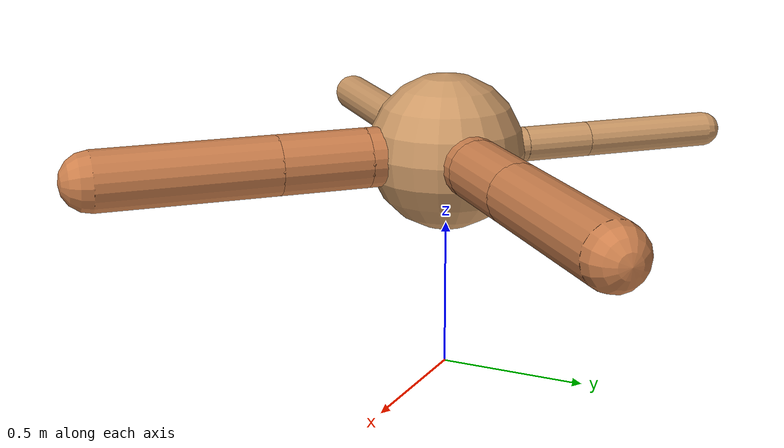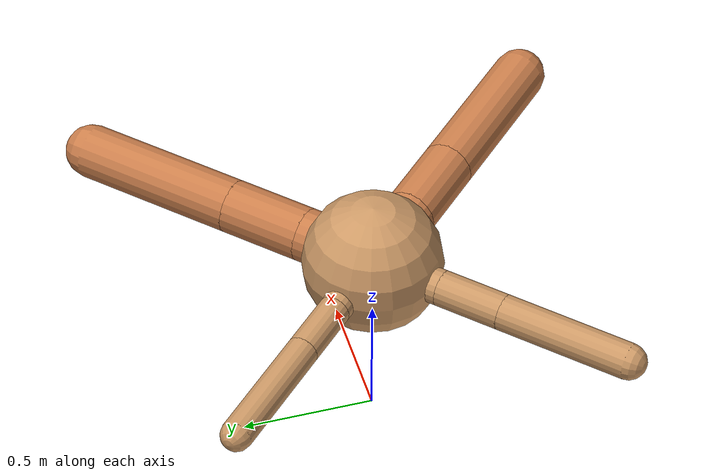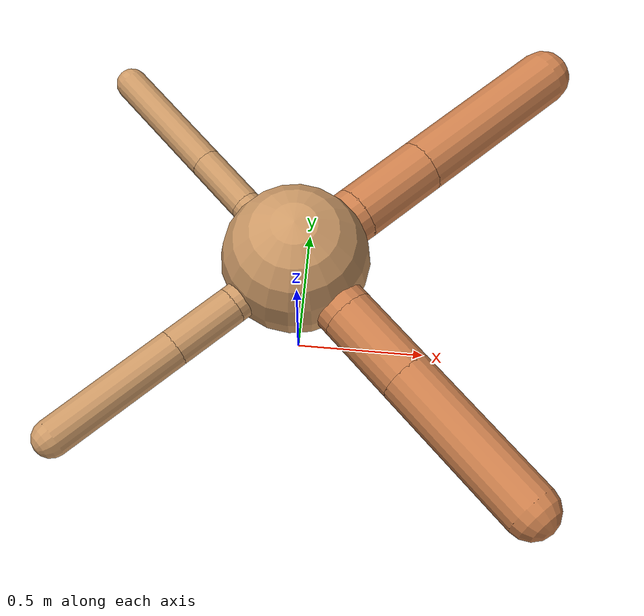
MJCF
<?xml version="1.0" ?>
<mujoco model="ant">

	<compiler angle="degree" coordinate="local" inertiafromgeom="true"/>

	<option integrator="RK4" timestep="0.01"/>

	<custom>

		<numeric data="0.0 0.0 0.55 1.0 0.0 0.0 0.0 0.0 1.0 0.0 -1.0 0.0 -1.0 0.0 1.0" name="init_qpos"/>

	</custom>

	<default>

		<joint armature="1" damping="1" limited="true"/>

		<geom conaffinity="0" condim="3" density="5.0" friction="1.5 0.1 0.1" margin="0.01" rgba="0.8 0.6 0.4 1"/>

	</default>

	<worldbody>

		<body name="torso" pos="0 0 0.75">

			<geom name="torso_geom" pos="0 0 0" size="0.26213571872190594" type="sphere"/>

			<!--joint armature="0" damping="0" limited="false" margin="0.01" name="root" pos="0 0 0" type="free"/-->

			<body name="front_left_leg" pos="0 0 0">

				<geom fromto="0 0 0 0.2 0.2 0" name="aux_1_geom" size="0.101212511032426" type="capsule" rgba=".8 .5 .3 1"/>

				<body name="aux_1" pos="0.2 0.2 0">

					<joint axis="0 0 1" name="hip_1" pos="0.0 0.0 0.0" range="-40 40" type="hinge"/>

					<geom fromto="0 0 0 0.217905930477387 0.217905930477387 0" name="left_leg_geom" size="0.101212511032426" type="capsule" rgba=".8 .5 .3 1"/>

					<body pos="0.217905930477387 0.217905930477387 0" name="front_left_foot">

						<joint axis="-1 1 0" name="ankle_1" pos="0.0 0.0 0.0" range="30 100" type="hinge"/>

						<geom fromto="0 0 0 0.435811860954774 0.435811860954774 0" name="left_ankle_geom" size="0.101212511032426" type="capsule" rgba=".8 .5 .3 1"/>

					</body>

				</body>

			</body>

			<body name="front_right_leg" pos="0 0 0">

				<geom fromto="0 0 0 -0.2 0.2 0" name="aux_2_geom" size="0.05895863158229936" type="capsule"/>

				<body name="aux_2" pos="-0.2 0.2 0">

					<joint axis="0 0 1" name="hip_2" pos="0.0 0.0 0.0" range="-40 40" type="hinge"/>

					<geom fromto="0 0 0 -0.16236474574136794 0.16236474574136794 0" name="right_leg_geom" size="0.05895863158229936" type="capsule"/>

					<body pos="-0.16236474574136794 0.16236474574136794 0" name="front_right_foot">

						<joint axis="1 1 0" name="ankle_2" pos="0.0 0.0 0.0" range="-100 -30" type="hinge"/>

						<geom fromto="0 0 0 -0.3247294914827359 0.3247294914827359 0" name="right_ankle_geom" size="0.05895863158229936" type="capsule"/>

					</body>

				</body>

			</body>

			<body name="left_back_leg" pos="0 0 0">

				<geom fromto="0 0 0 -0.2 -0.2 0" name="aux_3_geom" size="0.06690814778960522" type="capsule"/>

				<body name="aux_3" pos="-0.2 -0.2 0">

					<joint axis="0 0 1" name="hip_3" pos="0.0 0.0 0.0" range="-40 40" type="hinge"/>

					<geom fromto="0 0 0 -0.17565225762073755 -0.17565225762073755 0" name="back_leg_geom" size="0.06690814778960522" type="capsule"/>

					<body pos="-0.17565225762073755 -0.17565225762073755 0" name="left_back_foot">

						<joint axis="-1 1 0" name="ankle_3" pos="0.0 0.0 0.0" range="-100 -30" type="hinge"/>

						<geom fromto="0 0 0 -0.3513045152414751 -0.3513045152414751 0" name="third_ankle_geom" size="0.06690814778960522" type="capsule"/>

					</body>

				</body>

			</body>

			<body name="right_back_leg" pos="0 0 0">

				<geom fromto="0 0 0 0.2 -0.2 0" name="aux_4_geom" size="0.09959456465980811" type="capsule" rgba=".8 .5 .3 1"/>

				<body name="aux_4" pos="0.2 -0.2 0">

					<joint axis="0 0 1" name="hip_4" pos="0.0 0.0 0.0" range="-40 40" type="hinge"/>

					<geom fromto="0 0 0 0.21007622125166092 -0.21007622125166092 0" name="rightback_leg_geom" size="0.09959456465980811" type="capsule" rgba=".8 .5 .3 1"/>

					<body pos="0.21007622125166092 -0.21007622125166092 0" name="right_back_foot">

						<joint axis="1 1 0" name="ankle_4" pos="0.0 0.0 0.0" range="30 100" type="hinge"/>

						<geom fromto="0 0 0 0.42015244250332184 -0.42015244250332184 0" name="fourth_ankle_geom" size="0.09959456465980811" type="capsule" rgba=".8 .5 .3 1"/>

					</body>

				</body>

			</body>

		</body>

	</worldbody>

	<actuator>

		<motor ctrllimited="true" ctrlrange="-1.0 1.0" joint="hip_4" gear="150"/>

		<motor ctrllimited="true" ctrlrange="-1.0 1.0" joint="ankle_4" gear="150"/>

		<motor ctrllimited="true" ctrlrange="-1.0 1.0" joint="hip_1" gear="150"/>

		<motor ctrllimited="true" ctrlrange="-1.0 1.0" joint="ankle_1" gear="150"/>

		<motor ctrllimited="true" ctrlrange="-1.0 1.0" joint="hip_2" gear="150"/>

		<motor ctrllimited="true" ctrlrange="-1.0 1.0" joint="ankle_2" gear="150"/>

		<motor ctrllimited="true" ctrlrange="-1.0 1.0" joint="hip_3" gear="150"/>

		<motor ctrllimited="true" ctrlrange="-1.0 1.0" joint="ankle_3" gear="150"/>

	</actuator>

</mujoco>
